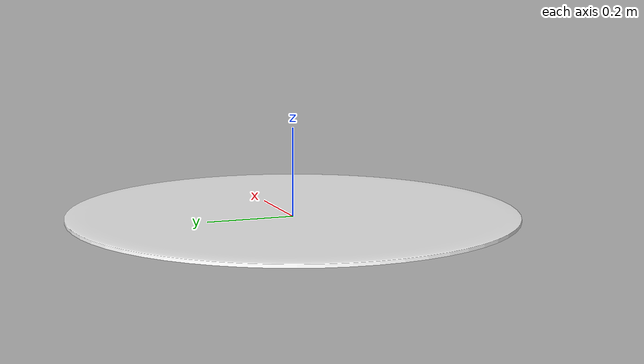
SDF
<?xml version="1.0"?>
<sdf version="1.9">
  <model name="InHouse2027Circle">
    <static>true</static>
    <link name="link">
      <pose>0.0000 0.0000 0 0 0 0</pose>
      <visual name="visual">
        <geometry>
          <mesh>
            <uri>model://InHouse2027Circle/mesh.stl</uri>
            <scale>40 40 2</scale>
          </mesh>
        </geometry>
        <material>
          <ambient>1 1 1 1</ambient>
          <diffuse>1 1 1 1</diffuse>
          <specular>0.01 0.01 0.01 1</specular>
          <emissive>0 0 0 1</emissive>
        </material>
      </visual>
      <collision name="collision">
        <pose>0.0000 0.0000 0.0051 0 0 0</pose>
        <geometry>
          <box>
            <size>1.016 1.016 0.0102</size>
          </box>
        </geometry>
      </collision>
    </link>
  </model>
</sdf>
